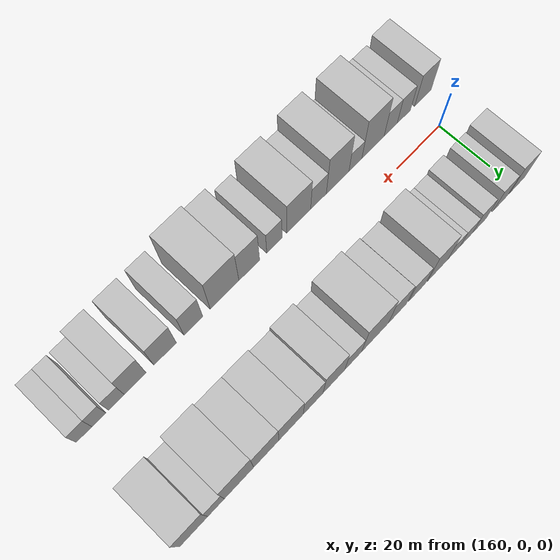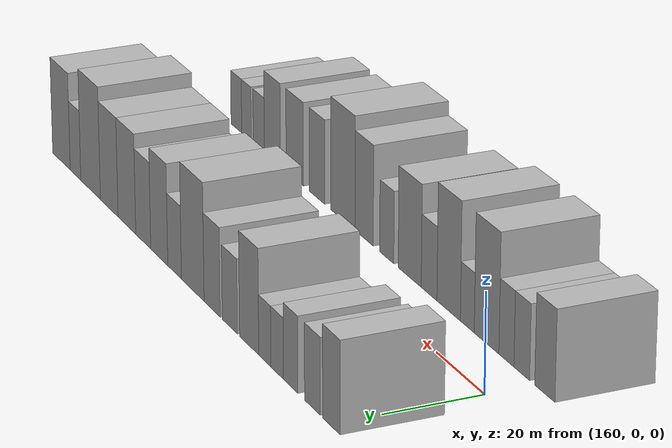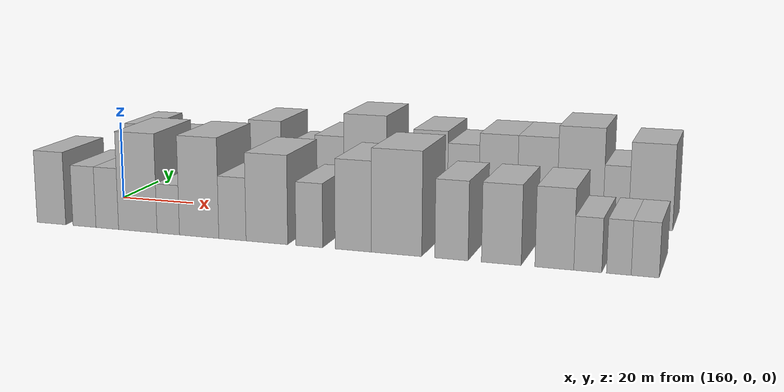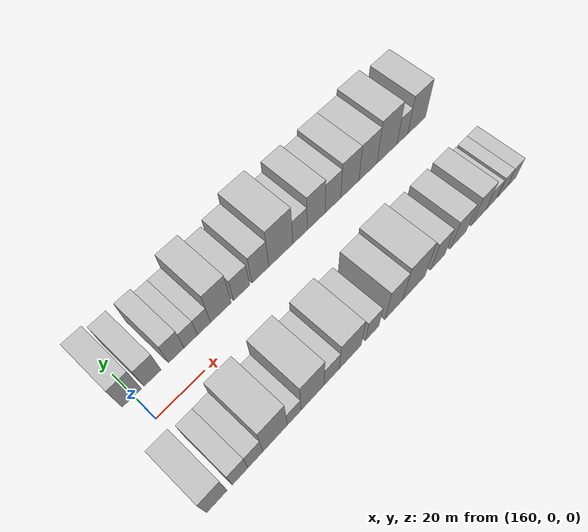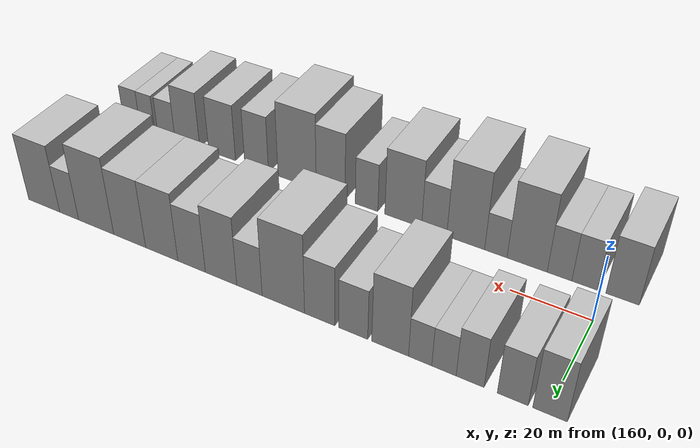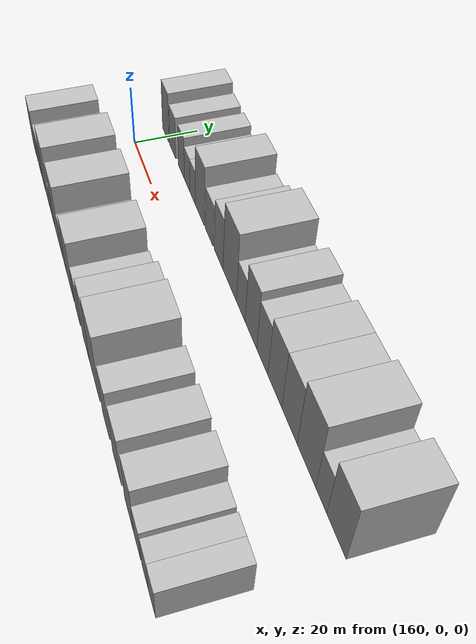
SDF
<sdf version="1.6">
 <world name="default">
  <model name="building_15">
   <static>1</static>
   <pose>159.3517 20.0000 0 0.000000 0.000000 1.570796</pose>
   <link name="link">
    <pose>0 0 9.00 0 0 0</pose>
    <collision name="collision"><geometry><box><size>20.0000 7.5536 18.0000</size></box></geometry></collision>
    <visual name="visual">
     <cast_shadows>0</cast_shadows>
     <geometry><box><size>20.0000 7.5536 18.0000</size></box></geometry>
     <material>
      <script>
       <uri>model://HANNAS_wall/materials/scripts</uri>
       <uri>model://HANNAS_wall/materials/textures</uri>
       <name>vrc/HANNAS_wall</name>
      </script>
     </material>
    </visual>
   </link>
  </model>
  <model name="building_16">
   <static>1</static>
   <pose>167.5825 20.0000 0 0.000000 0.000000 1.570796</pose>
   <link name="link">
    <pose>0 0 7.50 0 0 0</pose>
    <collision name="collision"><geometry><box><size>20.0000 6.9079 15.0000</size></box></geometry></collision>
    <visual name="visual">
     <cast_shadows>0</cast_shadows>
     <geometry><box><size>20.0000 6.9079 15.0000</size></box></geometry>
     <material>
      <script>
       <uri>model://HANNAS_wall/materials/scripts</uri>
       <uri>model://HANNAS_wall/materials/textures</uri>
       <name>vrc/HANNAS_wall</name>
      </script>
     </material>
    </visual>
   </link>
  </model>
  <model name="building_17">
   <static>1</static>
   <pose>177.2707 20.0000 0 0.000000 0.000000 1.570796</pose>
   <link name="link">
    <pose>0 0 7.50 0 0 0</pose>
    <collision name="collision"><geometry><box><size>20.0000 6.4686 15.0000</size></box></geometry></collision>
    <visual name="visual">
     <cast_shadows>0</cast_shadows>
     <geometry><box><size>20.0000 6.4686 15.0000</size></box></geometry>
     <material>
      <script>
       <uri>model://HANNAS_wall/materials/scripts</uri>
       <uri>model://HANNAS_wall/materials/textures</uri>
       <name>vrc/HANNAS_wall</name>
      </script>
     </material>
    </visual>
   </link>
  </model>
  <model name="building_18">
   <static>1</static>
   <pose>183.3950 20.0000 0 0.000000 0.000000 1.570796</pose>
   <link name="link">
    <pose>0 0 6.00 0 0 0</pose>
    <collision name="collision"><geometry><box><size>20.0000 5.7799 12.0000</size></box></geometry></collision>
    <visual name="visual">
     <cast_shadows>0</cast_shadows>
     <geometry><box><size>20.0000 5.7799 12.0000</size></box></geometry>
     <material>
      <script>
       <uri>model://HANNAS_wall/materials/scripts</uri>
       <uri>model://HANNAS_wall/materials/textures</uri>
       <name>vrc/HANNAS_wall</name>
      </script>
     </material>
    </visual>
   </link>
  </model>
  <model name="building_19">
   <static>1</static>
   <pose>189.0943 20.0000 0 0.000000 0.000000 1.570796</pose>
   <link name="link">
    <pose>0 0 6.00 0 0 0</pose>
    <collision name="collision"><geometry><box><size>20.0000 5.6186 12.0000</size></box></geometry></collision>
    <visual name="visual">
     <cast_shadows>0</cast_shadows>
     <geometry><box><size>20.0000 5.6186 12.0000</size></box></geometry>
     <material>
      <script>
       <uri>model://HANNAS_wall/materials/scripts</uri>
       <uri>model://HANNAS_wall/materials/textures</uri>
       <name>vrc/HANNAS_wall</name>
      </script>
     </material>
    </visual>
   </link>
  </model>
  <model name="building_20">
   <static>1</static>
   <pose>196.4568 20.0000 0 0.000000 0.000000 1.570796</pose>
   <link name="link">
    <pose>0 0 10.50 0 0 0</pose>
    <collision name="collision"><geometry><box><size>20.0000 9.1064 21.0000</size></box></geometry></collision>
    <visual name="visual">
     <cast_shadows>0</cast_shadows>
     <geometry><box><size>20.0000 9.1064 21.0000</size></box></geometry>
     <material>
      <script>
       <uri>model://HANNAS_wall/materials/scripts</uri>
       <uri>model://HANNAS_wall/materials/textures</uri>
       <name>vrc/HANNAS_wall</name>
      </script>
     </material>
    </visual>
   </link>
  </model>
  <model name="building_21">
   <static>1</static>
   <pose>205.6978 20.0000 0 0.000000 0.000000 1.570796</pose>
   <link name="link">
    <pose>0 0 7.50 0 0 0</pose>
    <collision name="collision"><geometry><box><size>20.0000 7.3757 15.0000</size></box></geometry></collision>
    <visual name="visual">
     <cast_shadows>0</cast_shadows>
     <geometry><box><size>20.0000 7.3757 15.0000</size></box></geometry>
     <material>
      <script>
       <uri>model://HANNAS_wall/materials/scripts</uri>
       <uri>model://HANNAS_wall/materials/textures</uri>
       <name>vrc/HANNAS_wall</name>
      </script>
     </material>
    </visual>
   </link>
  </model>
  <model name="building_22">
   <static>1</static>
   <pose>214.3622 20.0000 0 0.000000 0.000000 1.570796</pose>
   <link name="link">
    <pose>0 0 9.00 0 0 0</pose>
    <collision name="collision"><geometry><box><size>20.0000 7.9530 18.0000</size></box></geometry></collision>
    <visual name="visual">
     <cast_shadows>0</cast_shadows>
     <geometry><box><size>20.0000 7.9530 18.0000</size></box></geometry>
     <material>
      <script>
       <uri>model://HANNAS_wall/materials/scripts</uri>
       <uri>model://HANNAS_wall/materials/textures</uri>
       <name>vrc/HANNAS_wall</name>
      </script>
     </material>
    </visual>
   </link>
  </model>
  <model name="building_23">
   <static>1</static>
   <pose>224.0813 20.0000 0 0.000000 0.000000 1.570796</pose>
   <link name="link">
    <pose>0 0 12.00 0 0 0</pose>
    <collision name="collision"><geometry><box><size>20.0000 11.4852 24.0000</size></box></geometry></collision>
    <visual name="visual">
     <cast_shadows>0</cast_shadows>
     <geometry><box><size>20.0000 11.4852 24.0000</size></box></geometry>
     <material>
      <script>
       <uri>model://HANNAS_wall/materials/scripts</uri>
       <uri>model://HANNAS_wall/materials/textures</uri>
       <name>vrc/HANNAS_wall</name>
      </script>
     </material>
    </visual>
   </link>
  </model>
  <model name="building_24">
   <static>1</static>
   <pose>233.3610 20.0000 0 0.000000 0.000000 1.570796</pose>
   <link name="link">
    <pose>0 0 7.50 0 0 0</pose>
    <collision name="collision"><geometry><box><size>20.0000 7.0742 15.0000</size></box></geometry></collision>
    <visual name="visual">
     <cast_shadows>0</cast_shadows>
     <geometry><box><size>20.0000 7.0742 15.0000</size></box></geometry>
     <material>
      <script>
       <uri>model://HANNAS_wall/materials/scripts</uri>
       <uri>model://HANNAS_wall/materials/textures</uri>
       <name>vrc/HANNAS_wall</name>
      </script>
     </material>
    </visual>
   </link>
  </model>
  <model name="building_25">
   <static>1</static>
   <pose>241.3886 20.0000 0 0.000000 0.000000 1.570796</pose>
   <link name="link">
    <pose>0 0 10.50 0 0 0</pose>
    <collision name="collision"><geometry><box><size>20.0000 8.9811 21.0000</size></box></geometry></collision>
    <visual name="visual">
     <cast_shadows>0</cast_shadows>
     <geometry><box><size>20.0000 8.9811 21.0000</size></box></geometry>
     <material>
      <script>
       <uri>model://HANNAS_wall/materials/scripts</uri>
       <uri>model://HANNAS_wall/materials/textures</uri>
       <name>vrc/HANNAS_wall</name>
      </script>
     </material>
    </visual>
   </link>
  </model>
  <model name="building_26">
   <static>1</static>
   <pose>249.9192 20.0000 0 0.000000 0.000000 1.570796</pose>
   <link name="link">
    <pose>0 0 9.00 0 0 0</pose>
    <collision name="collision"><geometry><box><size>20.0000 8.0800 18.0000</size></box></geometry></collision>
    <visual name="visual">
     <cast_shadows>0</cast_shadows>
     <geometry><box><size>20.0000 8.0800 18.0000</size></box></geometry>
     <material>
      <script>
       <uri>model://HANNAS_wall/materials/scripts</uri>
       <uri>model://HANNAS_wall/materials/textures</uri>
       <name>vrc/HANNAS_wall</name>
      </script>
     </material>
    </visual>
   </link>
  </model>
  <model name="building_27">
   <static>1</static>
   <pose>258.8169 20.0000 0 0.000000 0.000000 1.570796</pose>
   <link name="link">
    <pose>0 0 10.50 0 0 0</pose>
    <collision name="collision"><geometry><box><size>20.0000 9.7153 21.0000</size></box></geometry></collision>
    <visual name="visual">
     <cast_shadows>0</cast_shadows>
     <geometry><box><size>20.0000 9.7153 21.0000</size></box></geometry>
     <material>
      <script>
       <uri>model://HANNAS_wall/materials/scripts</uri>
       <uri>model://HANNAS_wall/materials/textures</uri>
       <name>vrc/HANNAS_wall</name>
      </script>
     </material>
    </visual>
   </link>
  </model>
  <model name="building_28">
   <static>1</static>
   <pose>268.6389 20.0000 0 0.000000 0.000000 1.570796</pose>
   <link name="link">
    <pose>0 0 10.50 0 0 0</pose>
    <collision name="collision"><geometry><box><size>20.0000 9.9288 21.0000</size></box></geometry></collision>
    <visual name="visual">
     <cast_shadows>0</cast_shadows>
     <geometry><box><size>20.0000 9.9288 21.0000</size></box></geometry>
     <material>
      <script>
       <uri>model://HANNAS_wall/materials/scripts</uri>
       <uri>model://HANNAS_wall/materials/textures</uri>
       <name>vrc/HANNAS_wall</name>
      </script>
     </material>
    </visual>
   </link>
  </model>
  <model name="building_29">
   <static>1</static>
   <pose>279.2362 20.0000 0 0.000000 0.000000 1.570796</pose>
   <link name="link">
    <pose>0 0 12.00 0 0 0</pose>
    <collision name="collision"><geometry><box><size>20.0000 11.2658 24.0000</size></box></geometry></collision>
    <visual name="visual">
     <cast_shadows>0</cast_shadows>
     <geometry><box><size>20.0000 11.2658 24.0000</size></box></geometry>
     <material>
      <script>
       <uri>model://HANNAS_wall/materials/scripts</uri>
       <uri>model://HANNAS_wall/materials/textures</uri>
       <name>vrc/HANNAS_wall</name>
      </script>
     </material>
    </visual>
   </link>
  </model>
  <model name="building_30">
   <static>1</static>
   <pose>287.9729 20.0000 0 0.000000 0.000000 1.570796</pose>
   <link name="link">
    <pose>0 0 7.50 0 0 0</pose>
    <collision name="collision"><geometry><box><size>20.0000 6.2075 15.0000</size></box></geometry></collision>
    <visual name="visual">
     <cast_shadows>0</cast_shadows>
     <geometry><box><size>20.0000 6.2075 15.0000</size></box></geometry>
     <material>
      <script>
       <uri>model://HANNAS_wall/materials/scripts</uri>
       <uri>model://HANNAS_wall/materials/textures</uri>
       <name>vrc/HANNAS_wall</name>
      </script>
     </material>
    </visual>
   </link>
  </model>
  <model name="building_31">
   <static>1</static>
   <pose>296.3092 20.0000 0 0.000000 0.000000 1.570796</pose>
   <link name="link">
    <pose>0 0 10.50 0 0 0</pose>
    <collision name="collision"><geometry><box><size>20.0000 10.4650 21.0000</size></box></geometry></collision>
    <visual name="visual">
     <cast_shadows>0</cast_shadows>
     <geometry><box><size>20.0000 10.4650 21.0000</size></box></geometry>
     <material>
      <script>
       <uri>model://HANNAS_wall/materials/scripts</uri>
       <uri>model://HANNAS_wall/materials/textures</uri>
       <name>vrc/HANNAS_wall</name>
      </script>
     </material>
    </visual>
   </link>
  </model>
  <model name="building_49">
   <static>1</static>
   <pose>156.2606 -20.0000 0 0.000000 0.000000 1.570796</pose>
   <link name="link">
    <pose>0 0 9.00 0 0 0</pose>
    <collision name="collision"><geometry><box><size>20.0000 7.9537 18.0000</size></box></geometry></collision>
    <visual name="visual">
     <cast_shadows>0</cast_shadows>
     <geometry><box><size>20.0000 7.9537 18.0000</size></box></geometry>
     <material>
      <script>
       <uri>model://HANNAS_wall/materials/scripts</uri>
       <uri>model://HANNAS_wall/materials/textures</uri>
       <name>vrc/HANNAS_wall</name>
      </script>
     </material>
    </visual>
   </link>
  </model>
  <model name="building_50">
   <static>1</static>
   <pose>165.3881 -20.0000 0 0.000000 0.000000 1.570796</pose>
   <link name="link">
    <pose>0 0 7.50 0 0 0</pose>
    <collision name="collision"><geometry><box><size>20.0000 6.3014 15.0000</size></box></geometry></collision>
    <visual name="visual">
     <cast_shadows>0</cast_shadows>
     <geometry><box><size>20.0000 6.3014 15.0000</size></box></geometry>
     <material>
      <script>
       <uri>model://HANNAS_wall/materials/scripts</uri>
       <uri>model://HANNAS_wall/materials/textures</uri>
       <name>vrc/HANNAS_wall</name>
      </script>
     </material>
    </visual>
   </link>
  </model>
  <model name="building_51">
   <static>1</static>
   <pose>171.6051 -20.0000 0 0.000000 0.000000 1.570796</pose>
   <link name="link">
    <pose>0 0 7.50 0 0 0</pose>
    <collision name="collision"><geometry><box><size>20.0000 6.1325 15.0000</size></box></geometry></collision>
    <visual name="visual">
     <cast_shadows>0</cast_shadows>
     <geometry><box><size>20.0000 6.1325 15.0000</size></box></geometry>
     <material>
      <script>
       <uri>model://HANNAS_wall/materials/scripts</uri>
       <uri>model://HANNAS_wall/materials/textures</uri>
       <name>vrc/HANNAS_wall</name>
      </script>
     </material>
    </visual>
   </link>
  </model>
  <model name="building_52">
   <static>1</static>
   <pose>179.7959 -20.0000 0 0.000000 0.000000 1.570796</pose>
   <link name="link">
    <pose>0 0 12.00 0 0 0</pose>
    <collision name="collision"><geometry><box><size>20.0000 10.2491 24.0000</size></box></geometry></collision>
    <visual name="visual">
     <cast_shadows>0</cast_shadows>
     <geometry><box><size>20.0000 10.2491 24.0000</size></box></geometry>
     <material>
      <script>
       <uri>model://HANNAS_wall/materials/scripts</uri>
       <uri>model://HANNAS_wall/materials/textures</uri>
       <name>vrc/HANNAS_wall</name>
      </script>
     </material>
    </visual>
   </link>
  </model>
  <model name="building_53">
   <static>1</static>
   <pose>187.8614 -20.0000 0 0.000000 0.000000 1.570796</pose>
   <link name="link">
    <pose>0 0 6.00 0 0 0</pose>
    <collision name="collision"><geometry><box><size>20.0000 5.8819 12.0000</size></box></geometry></collision>
    <visual name="visual">
     <cast_shadows>0</cast_shadows>
     <geometry><box><size>20.0000 5.8819 12.0000</size></box></geometry>
     <material>
      <script>
       <uri>model://HANNAS_wall/materials/scripts</uri>
       <uri>model://HANNAS_wall/materials/textures</uri>
       <name>vrc/HANNAS_wall</name>
      </script>
     </material>
    </visual>
   </link>
  </model>
  <model name="building_54">
   <static>1</static>
   <pose>195.8802 -20.0000 0 0.000000 0.000000 1.570796</pose>
   <link name="link">
    <pose>0 0 12.00 0 0 0</pose>
    <collision name="collision"><geometry><box><size>20.0000 10.1558 24.0000</size></box></geometry></collision>
    <visual name="visual">
     <cast_shadows>0</cast_shadows>
     <geometry><box><size>20.0000 10.1558 24.0000</size></box></geometry>
     <material>
      <script>
       <uri>model://HANNAS_wall/materials/scripts</uri>
       <uri>model://HANNAS_wall/materials/textures</uri>
       <name>vrc/HANNAS_wall</name>
      </script>
     </material>
    </visual>
   </link>
  </model>
  <model name="building_55">
   <static>1</static>
   <pose>204.4165 -20.0000 0 0.000000 0.000000 1.570796</pose>
   <link name="link">
    <pose>0 0 7.50 0 0 0</pose>
    <collision name="collision"><geometry><box><size>20.0000 6.9168 15.0000</size></box></geometry></collision>
    <visual name="visual">
     <cast_shadows>0</cast_shadows>
     <geometry><box><size>20.0000 6.9168 15.0000</size></box></geometry>
     <material>
      <script>
       <uri>model://HANNAS_wall/materials/scripts</uri>
       <uri>model://HANNAS_wall/materials/textures</uri>
       <name>vrc/HANNAS_wall</name>
      </script>
     </material>
    </visual>
   </link>
  </model>
  <model name="building_56">
   <static>1</static>
   <pose>213.0708 -20.0000 0 0.000000 0.000000 1.570796</pose>
   <link name="link">
    <pose>0 0 10.50 0 0 0</pose>
    <collision name="collision"><geometry><box><size>20.0000 10.3918 21.0000</size></box></geometry></collision>
    <visual name="visual">
     <cast_shadows>0</cast_shadows>
     <geometry><box><size>20.0000 10.3918 21.0000</size></box></geometry>
     <material>
      <script>
       <uri>model://HANNAS_wall/materials/scripts</uri>
       <uri>model://HANNAS_wall/materials/textures</uri>
       <name>vrc/HANNAS_wall</name>
      </script>
     </material>
    </visual>
   </link>
  </model>
  <model name="building_57">
   <static>1</static>
   <pose>223.5414 -20.0000 0 0.000000 0.000000 1.570796</pose>
   <link name="link">
    <pose>0 0 7.50 0 0 0</pose>
    <collision name="collision"><geometry><box><size>20.0000 6.5494 15.0000</size></box></geometry></collision>
    <visual name="visual">
     <cast_shadows>0</cast_shadows>
     <geometry><box><size>20.0000 6.5494 15.0000</size></box></geometry>
     <material>
      <script>
       <uri>model://HANNAS_wall/materials/scripts</uri>
       <uri>model://HANNAS_wall/materials/textures</uri>
       <name>vrc/HANNAS_wall</name>
      </script>
     </material>
    </visual>
   </link>
  </model>
  <model name="building_58">
   <static>1</static>
   <pose>234.1460 -20.0000 0 0.000000 0.000000 1.570796</pose>
   <link name="link">
    <pose>0 0 10.50 0 0 0</pose>
    <collision name="collision"><geometry><box><size>20.0000 8.6597 21.0000</size></box></geometry></collision>
    <visual name="visual">
     <cast_shadows>0</cast_shadows>
     <geometry><box><size>20.0000 8.6597 21.0000</size></box></geometry>
     <material>
      <script>
       <uri>model://HANNAS_wall/materials/scripts</uri>
       <uri>model://HANNAS_wall/materials/textures</uri>
       <name>vrc/HANNAS_wall</name>
      </script>
     </material>
    </visual>
   </link>
  </model>
  <model name="building_59">
   <static>1</static>
   <pose>244.3798 -20.0000 0 0.000000 0.000000 1.570796</pose>
   <link name="link">
    <pose>0 0 12.00 0 0 0</pose>
    <collision name="collision"><geometry><box><size>20.0000 11.8079 24.0000</size></box></geometry></collision>
    <visual name="visual">
     <cast_shadows>0</cast_shadows>
     <geometry><box><size>20.0000 11.8079 24.0000</size></box></geometry>
     <material>
      <script>
       <uri>model://HANNAS_wall/materials/scripts</uri>
       <uri>model://HANNAS_wall/materials/textures</uri>
       <name>vrc/HANNAS_wall</name>
      </script>
     </material>
    </visual>
   </link>
  </model>
  <model name="building_60">
   <static>1</static>
   <pose>257.0723 -20.0000 0 0.000000 0.000000 1.570796</pose>
   <link name="link">
    <pose>0 0 9.00 0 0 0</pose>
    <collision name="collision"><geometry><box><size>20.0000 7.5772 18.0000</size></box></geometry></collision>
    <visual name="visual">
     <cast_shadows>0</cast_shadows>
     <geometry><box><size>20.0000 7.5772 18.0000</size></box></geometry>
     <material>
      <script>
       <uri>model://HANNAS_wall/materials/scripts</uri>
       <uri>model://HANNAS_wall/materials/textures</uri>
       <name>vrc/HANNAS_wall</name>
      </script>
     </material>
    </visual>
   </link>
  </model>
  <model name="building_61">
   <static>1</static>
   <pose>268.2878 -20.0000 0 0.000000 0.000000 1.570796</pose>
   <link name="link">
    <pose>0 0 9.00 0 0 0</pose>
    <collision name="collision"><geometry><box><size>20.0000 8.8536 18.0000</size></box></geometry></collision>
    <visual name="visual">
     <cast_shadows>0</cast_shadows>
     <geometry><box><size>20.0000 8.8536 18.0000</size></box></geometry>
     <material>
      <script>
       <uri>model://HANNAS_wall/materials/scripts</uri>
       <uri>model://HANNAS_wall/materials/textures</uri>
       <name>vrc/HANNAS_wall</name>
      </script>
     </material>
    </visual>
   </link>
  </model>
  <model name="building_62">
   <static>1</static>
   <pose>279.9333 -20.0000 0 0.000000 0.000000 1.570796</pose>
   <link name="link">
    <pose>0 0 9.00 0 0 0</pose>
    <collision name="collision"><geometry><box><size>20.0000 8.4375 18.0000</size></box></geometry></collision>
    <visual name="visual">
     <cast_shadows>0</cast_shadows>
     <geometry><box><size>20.0000 8.4375 18.0000</size></box></geometry>
     <material>
      <script>
       <uri>model://HANNAS_wall/materials/scripts</uri>
       <uri>model://HANNAS_wall/materials/textures</uri>
       <name>vrc/HANNAS_wall</name>
      </script>
     </material>
    </visual>
   </link>
  </model>
  <model name="building_63">
   <static>1</static>
   <pose>287.1393 -20.0000 0 0.000000 0.000000 1.570796</pose>
   <link name="link">
    <pose>0 0 6.00 0 0 0</pose>
    <collision name="collision"><geometry><box><size>20.0000 5.9745 12.0000</size></box></geometry></collision>
    <visual name="visual">
     <cast_shadows>0</cast_shadows>
     <geometry><box><size>20.0000 5.9745 12.0000</size></box></geometry>
     <material>
      <script>
       <uri>model://HANNAS_wall/materials/scripts</uri>
       <uri>model://HANNAS_wall/materials/textures</uri>
       <name>vrc/HANNAS_wall</name>
      </script>
     </material>
    </visual>
   </link>
  </model>
  <model name="building_64">
   <static>1</static>
   <pose>293.7305 -20.0000 0 0.000000 0.000000 1.570796</pose>
   <link name="link">
    <pose>0 0 6.00 0 0 0</pose>
    <collision name="collision"><geometry><box><size>20.0000 5.2081 12.0000</size></box></geometry></collision>
    <visual name="visual">
     <cast_shadows>0</cast_shadows>
     <geometry><box><size>20.0000 5.2081 12.0000</size></box></geometry>
     <material>
      <script>
       <uri>model://HANNAS_wall/materials/scripts</uri>
       <uri>model://HANNAS_wall/materials/textures</uri>
       <name>vrc/HANNAS_wall</name>
      </script>
     </material>
    </visual>
   </link>
  </model>
  <model name="building_65">
   <static>1</static>
   <pose>299.2536 -20.0000 0 0.000000 0.000000 1.570796</pose>
   <link name="link">
    <pose>0 0 6.00 0 0 0</pose>
    <collision name="collision"><geometry><box><size>20.0000 5.8380 12.0000</size></box></geometry></collision>
    <visual name="visual">
     <cast_shadows>0</cast_shadows>
     <geometry><box><size>20.0000 5.8380 12.0000</size></box></geometry>
     <material>
      <script>
       <uri>model://HANNAS_wall/materials/scripts</uri>
       <uri>model://HANNAS_wall/materials/textures</uri>
       <name>vrc/HANNAS_wall</name>
      </script>
     </material>
    </visual>
   </link>
  </model>
 </world>
</sdf>
